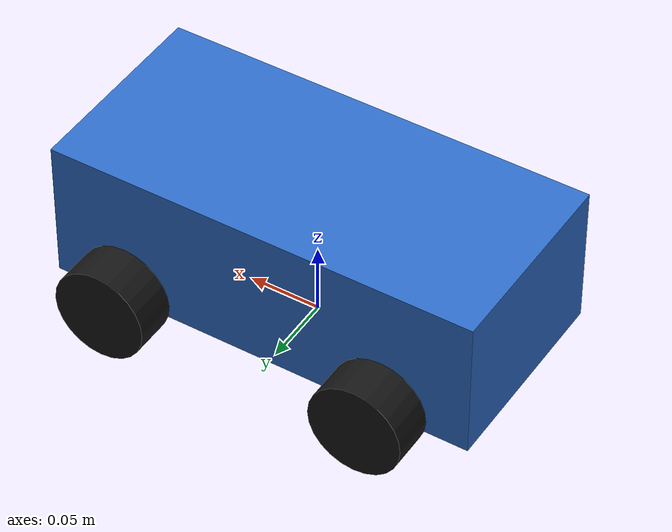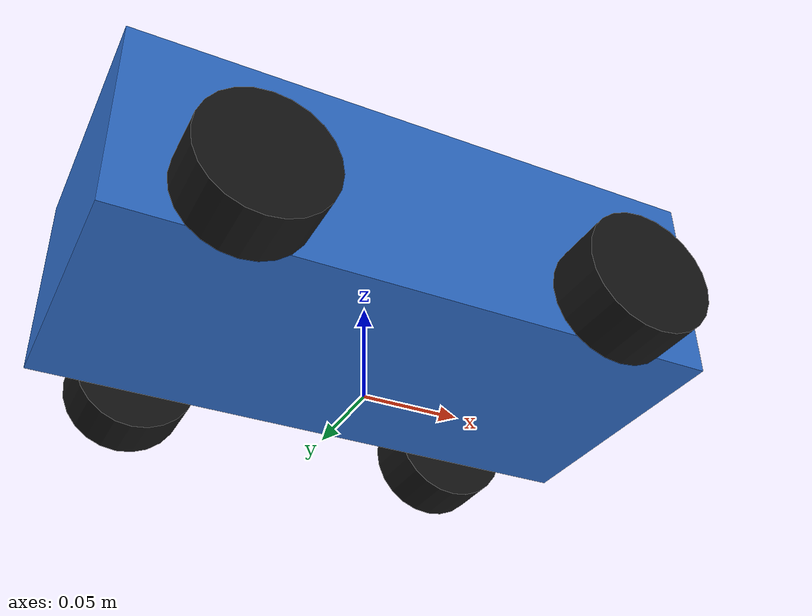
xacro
<?xml version="1.0"?>
<robot name="curiousrobot_4wd" xmlns:xacro="http://www.ros.org/wiki/xacro">
  <xacro:include filename="$(find curiousrobot_description)/urdf/curiousrobot_properties.urdf.xacro"/>
  <xacro:include filename="$(find curiousrobot_description)/urdf/mech/base.urdf.xacro"/>
  <xacro:include filename="$(find curiousrobot_description)/urdf/mech/wheel.urdf.xacro"/>

  <xacro:curiousrobot_base
    length="${base_length}" width="${base_width}" height="${base_height}"
    mass="${base_mass}" wheel_radius="${wheel_radius}"
    wheel_pos_z="${wheel_pos_z}" mesh_file="${base_mesh_file}"/>

  <xacro:curiousrobot_wheel side="front_left" radius="${wheel_radius}" width="${wheel_width}"
    pos_x="${wheel_pos_x}" pos_y="${wheel_pos_y}" pos_z="${wheel_pos_z}"
    mass="${wheel_mass}" mesh_file="${wheel_mesh_file}"/>
  <xacro:curiousrobot_wheel side="front_right" radius="${wheel_radius}" width="${wheel_width}"
    pos_x="${wheel_pos_x}" pos_y="-${wheel_pos_y}" pos_z="${wheel_pos_z}"
    mass="${wheel_mass}" mesh_file="${wheel_mesh_file}"/>
  <xacro:curiousrobot_wheel side="rear_left" radius="${wheel_radius}" width="${wheel_width}"
    pos_x="-${wheel_pos_x}" pos_y="${wheel_pos_y}" pos_z="${wheel_pos_z}"
    mass="${wheel_mass}" mesh_file="${wheel_mesh_file}"/>
  <xacro:curiousrobot_wheel side="rear_right" radius="${wheel_radius}" width="${wheel_width}"
    pos_x="-${wheel_pos_x}" pos_y="-${wheel_pos_y}" pos_z="${wheel_pos_z}"
    mass="${wheel_mass}" mesh_file="${wheel_mesh_file}"/>

  <link name="imu_link"/>
  <joint name="imu_to_base_link" type="fixed">
    <parent link="base_link"/><child link="imu_link"/>
    <origin xyz="${imu_pos_x} ${imu_pos_y} ${imu_pos_z}" rpy="${imu_rpy}"/>
  </joint>
</robot>

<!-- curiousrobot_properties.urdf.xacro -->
<robot xmlns:xacro="http://www.ros.org/wiki/xacro">
  <!-- Known STM32 chassis values. All dimensions are metres. -->
  <xacro:property name="wheel_radius" value="0.0325"/>
  <xacro:property name="wheel_track" value="0.185"/>
  <xacro:property name="wheel_pos_y" value="${wheel_track / 2.0}"/>
  <!-- User measured both axle distance and track as 185 mm. -->
  <xacro:property name="wheelbase" value="0.185"/>
  <xacro:property name="wheel_pos_x" value="${wheelbase / 2.0}"/>
  <!-- Body dimensions, masses and wheel width remain provisional. -->
  <xacro:property name="base_length" value="0.300"/>
  <xacro:property name="base_width" value="0.140"/>
  <xacro:property name="base_height" value="0.100"/>
  <xacro:property name="base_mass" value="5.0"/>
  <xacro:property name="wheel_width" value="0.030"/>
  <xacro:property name="wheel_mass" value="0.25"/>
  <xacro:property name="wheel_pos_z" value="${-wheel_radius}"/>
  <xacro:property name="base_mesh_file" value=""/>
  <xacro:property name="wheel_mesh_file" value=""/>
  <xacro:property name="imu_rpy" value="0 0 0"/>
  <!-- Provisional IMU pose; measure on the real robot. -->
  <xacro:property name="imu_pos_x" value="0.0"/>
  <xacro:property name="imu_pos_y" value="0.0"/>
  <xacro:property name="imu_pos_z" value="0.050"/>
</robot>

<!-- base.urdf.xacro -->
<robot xmlns:xacro="http://www.ros.org/wiki/xacro">
  <xacro:macro name="curiousrobot_base" params="length width height mass wheel_radius wheel_pos_z mesh_file">
    <link name="base_footprint"/>
    <link name="base_link">
      <visual>
        <geometry>
          <xacro:if value="${mesh_file == ''}"><box size="${length} ${width} ${height}"/></xacro:if>
          <xacro:unless value="${mesh_file == ''}"><mesh filename="${mesh_file}"/></xacro:unless>
        </geometry>
        <material name="curiousrobot_body"><color rgba="0.18 0.42 0.78 1.0"/></material>
      </visual>
      <collision><geometry><box size="${length} ${width} ${height}"/></geometry></collision>
      <inertial>
        <mass value="${mass}"/>
        <inertia
          ixx="${(1.0 / 12.0) * mass * (width * width + height * height)}"
          ixy="0" ixz="0"
          iyy="${(1.0 / 12.0) * mass * (length * length + height * height)}"
          iyz="0"
          izz="${(1.0 / 12.0) * mass * (length * length + width * width)}"/>
      </inertial>
    </link>
    <joint name="base_to_footprint" type="fixed">
      <parent link="base_footprint"/><child link="base_link"/>
      <origin xyz="0 0 ${wheel_radius - wheel_pos_z}" rpy="0 0 0"/>
    </joint>
  </xacro:macro>
</robot>

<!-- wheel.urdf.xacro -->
<robot xmlns:xacro="http://www.ros.org/wiki/xacro">
  <xacro:macro name="curiousrobot_wheel" params="side radius width pos_x pos_y pos_z mass mesh_file">
    <link name="${side}_wheel_link">
      <visual>
        <origin xyz="0 0 0" rpy="${pi / 2.0} 0 0"/>
        <geometry>
          <xacro:if value="${mesh_file == ''}"><cylinder radius="${radius}" length="${width}"/></xacro:if>
          <xacro:unless value="${mesh_file == ''}"><mesh filename="${mesh_file}"/></xacro:unless>
        </geometry>
        <material name="curiousrobot_tire"><color rgba="0.08 0.08 0.08 1.0"/></material>
      </visual>
      <collision>
        <origin xyz="0 0 0" rpy="${pi / 2.0} 0 0"/>
        <geometry><cylinder radius="${radius}" length="${width}"/></geometry>
      </collision>
      <inertial>
        <mass value="${mass}"/>
        <inertia
          ixx="${mass * (3 * radius * radius + width * width) / 12.0}" ixy="0" ixz="0"
          iyy="${mass * radius * radius / 2.0}" iyz="0"
          izz="${mass * (3 * radius * radius + width * width) / 12.0}"/>
      </inertial>
    </link>
    <joint name="${side}_wheel_joint" type="continuous">
      <parent link="base_link"/><child link="${side}_wheel_link"/>
      <origin xyz="${pos_x} ${pos_y} ${pos_z}" rpy="0 0 0"/>
      <axis xyz="0 1 0"/>
    </joint>
  </xacro:macro>
</robot>
